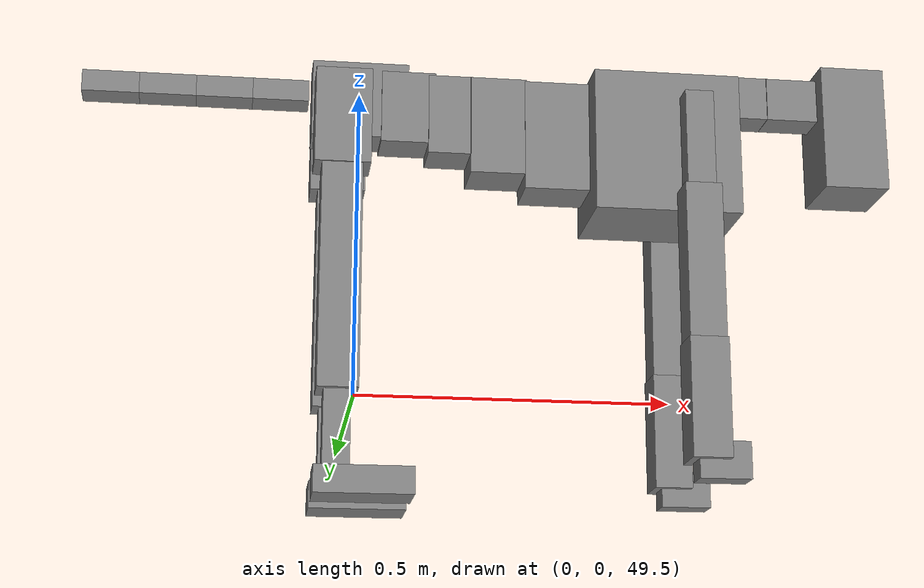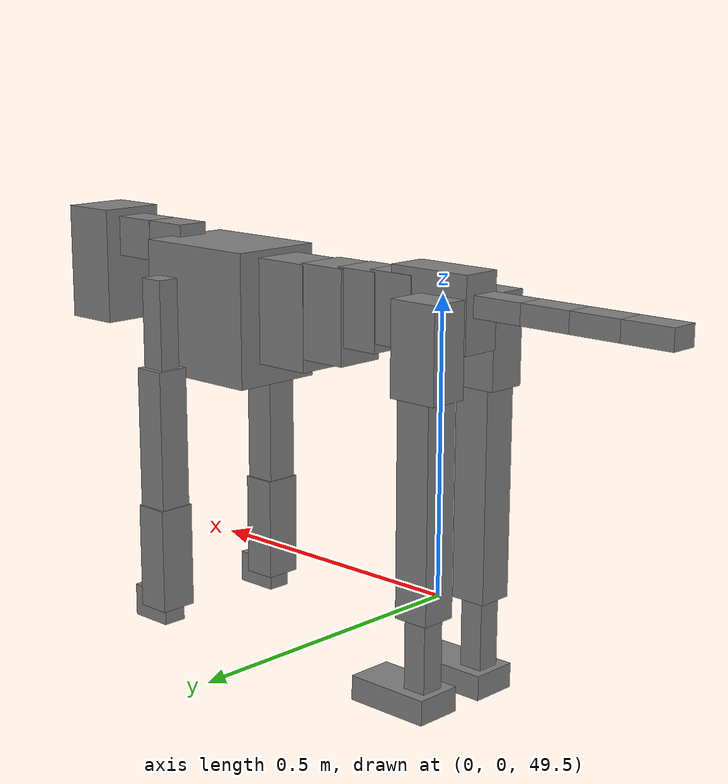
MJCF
<mujoco model="dog">

    <default>
        <joint armature="0.02" stiffness="1" damping="0.2" limited="true"/>
        <geom condim="3" friction="1 0.05 0.05" margin="0.01"/>
        <motor ctrllimited="true" ctrlrange="-1.0 1.0" forcelimited="true" gear="50"/>
    </default>

    <compiler inertiafromgeom="true" angle="radian"/>

    <option timestep="0.016" iterations="50" tolerance="1e-10" solver="Newton" jacobian="dense" cone="pyramidal"/>

    <size nconmax="20000" njmax="60000" nstack="5000000"/>
    <visual>
        <map force="0.1" zfar="30"/>
        <rgba haze="0.15 0.25 0.35 1"/>
        <quality shadowsize="2048"/>
        <global offwidth="800" offheight="800"/>
    </visual>

    <asset>
        <texture type="skybox" builtin="gradient" rgb1="0.3 0.5 0.7" rgb2="0 0 0" width="512" height="512"/>
        <texture name="texplane" type="2d" builtin="checker" rgb1=".2 .3 .4" rgb2=".1 0.15 0.2" width="512" height="512"
                 mark="cross" markrgb=".8 .8 .8"/>
        <texture name="texgeom" type="cube" builtin="flat" mark="cross" width="127" height="1278" rgb1="0.8 0.6 0.4"
                 rgb2="0.8 0.6 0.4" markrgb="1 1 1" random="0.01"/>

        <material name="matplane" reflectance="0.3" texture="texplane" texrepeat="1 1" texuniform="true"/>
        <material name="matgeom" texture="texgeom" texuniform="true" rgba="0.8 0.6 .4 1"/>
    </asset>

    <worldbody>
        <geom name="floor" pos="0 0 0" size="0 0 .25" type="plane" material="matplane" condim="3"/>

        <light directional="false" diffuse=".2 .2 .2" specular="0 0 0" pos="0 0 5" dir="0 0 -1" castshadow="false"/>
        <light mode="targetbodycom" target="torso" directional="false" diffuse=".8 .8 .8" specular="0.3 0.3 0.3"
               pos="0 0 4.0" dir="0 0 -1"/>

        <body name="root" pos="0 0 50">
            <freejoint name="root_1"/>
            <geom type="box" pos="0 0 -0.02" size="0.0774  0.0358  0.063" density="2030"/>

            <body name="spine1" pos="0.054 0 0">
                <joint name="spine1_y" axis="0 1 0" range="0 0.7" limited="true"/>
                <geom type="box" pos="0.02375 0 -0.03" size="0.04375  0.0375  0.05985" density="2030"/>

                <body name="spine2" pos="0.0612 0 0">
                    <joint name="spine2_y" axis="0 1 0" range="-0.15 0.15" limited="true"/>
                    <geom type="box" pos="0.03555  0  -0.04" size="0.04055  0.039  0.06615" density="2030"/>

                    <body name="spine3" pos="0.0730 0 0">
                        <joint name="spine3_y" axis="0 1 0" range="-0.15 0.15" limited="true"/>
                        <geom type="box" pos="0.03555  0  -0.057" size="0.04555  0.0445  0.081" density="2030"/>

                        <body name="spine4" pos="0.0780 0 0">
                            <joint name="spine4_y" axis="0 1 0" range="-0.15 0.15" limited="true"/>
                            <geom type="box" pos="0.05265  0  -0.07" size="0.05265  0.045  0.09135" density="2030"/>

                            <body name="torso" pos="0.1082 0 0">
                                <joint name="torso_y" axis="0 1 0" range="-0.15 0.15" limited="true"/>
                                <geom type="box" pos="0.11925  0  -0.085" size="0.11925  0.085  0.11745"
                                      density="2030"/>

                                <body name="neck1" pos="0.2160  0   0.0180">
                                    <joint name="neck1_y" axis="0 1 0" range="-1.2  -1" limited="true"/>
                                    <geom type="box" pos="0.0423  0  0" size="0.0423  0.03  0.036" density="2325"/>

                                    <body name="neck2" pos="0.0853  0  0">
                                        <joint name="neck2_y" axis="0 1 0" range="0.1  0" limited="true"/>
                                        <geom type="box" pos="0.0423  0  0" size="0.0423  0.03  0.036" density="2325"/>

                                        <body name="head" pos="0.0853  0  0">
                                            <joint name="head_y" axis="0 1 0" range="-0.3  -0.2" limited="true"/>
                                            <geom type="box" pos="0.0531  0  -0.055" size="0.0531  0.06  0.1044"
                                                  density="4030"/>

                                        </body>
                                    </body>
                                </body>

                                <body name="front_shoulder" pos="0.156  0   -0.0480">
                                    <joint name="front_shoulder_y" axis="0 1 0" range="-1 1.5" limited="true"/>
                                    <geom type="box" pos="0 0.13 -0.0656" size="0.0228  0.0195  0.0922" density="1158"/>
                                    <geom type="box" pos="0 -0.13 -0.0656" size="0.0228  0.0195  0.0922"
                                          density="1158"/>

                                    <body name="front_elbow" pos="0  0  -0.1312">
                                        <joint name="front_elbow_y" axis="0 1 0" range="-2 0" limited="true"/>
                                        <geom type="box" pos="0 0.13 -0.1310" size="0.0291  0.0298  0.1310"
                                              density="1081"/>
                                        <geom type="box" pos="0 -0.13 -0.1310" size="0.0291  0.0298  0.1310"
                                              density="1081"/>

                                        <body name="front_wrist" pos="0  0  -0.2621">
                                            <joint name="front_wrist_y" axis="0 1 0" range="-0.2 0" limited="true"/>
                                            <geom type="box" pos="0 0.13 -0.0806" size="0.0306  0.0340  0.0937"
                                                  density="1664"/>
                                            <geom type="box" pos="0 -0.13 -0.0806" size="0.0306  0.0340  0.0937"
                                                  density="1664"/>

                                            <body name="front_finger_end" pos="0  0  -0.1611">
                                                <joint name="front_finger_y" axis="0 1 0" range="-0.4 1"
                                                       limited="true"/>
                                                <geom type="box" pos="0.0220  0.13  -0.0140"
                                                      size="0.0403  0.0220  0.0290" density="1515"/>
                                                <geom type="box" pos="0.0220  -0.13  -0.0140"
                                                      size="0.0403  0.0220  0.0290" density="1515"/>

                                            </body>

                                        </body>
                                    </body>
                                </body>

                            </body>
                        </body>
                    </body>
                </body>
            </body>

            <body name="back_hip" pos="-0.03 0 -0.018">
                <joint name="back_hip_y" axis="0 1 0" range="-1.5 0.3" limited="true"/>
                <geom type="box" pos="0 0.07 -0.0554" size="0.0443  0.0348  0.0782" density="1154"/>
                <geom type="box" pos="0 -0.07 -0.0554" size="0.0443  0.0348  0.0782" density="1154"/>

                <body name="back_knee" pos="0  0  -0.1109">
                    <joint name="back_knee_y" axis="0 1 0" range="0 2.8" limited="true"/>
                    <geom type="box" pos="0 0.07 -0.1830" size="0.0321  0.0317  0.1986" density="1227"/>
                    <geom type="box" pos="0 -0.07 -0.1830" size="0.0321  0.0317  0.1986" density="1227"/>

                    <body name="back_ankle" pos="0  0  -0.3660">
                        <joint name="back_ankle_y" axis="0 1 0" range="-2.2 0" limited="true"/>
                        <geom type="box" pos="0 0.07 -0.0753" size="0.0210  0.0210  0.0866" density="1284"/>
                        <geom type="box" pos="0 -0.07 -0.0753" size="0.0210  0.0210  0.0866" density="1284"/>

                        <body name="back_toe_end" pos="0  0  -0.1507">
                            <joint name="back_toe_y" axis="0 1 0" range="-0.4 1" limited="true"/>
                            <geom type="box" pos="0.0416  0.07  -0.0063" size="0.0763  0.0416  0.0213" density="1515"/>
                            <geom type="box" pos="0.0416  -0.07  -0.0063" size="0.0763  0.0416  0.0213" density="1515"/>

                        </body>
                    </body>
                </body>
            </body>

            <body name="tail1" pos="-0.074 0 -0.006">
                <joint name="tail1_y" axis="0 1 0" range="-0.2 0.2" limited="true"/>
                <geom type="box" pos="-0.0536  0  0" size="0.045  0.025  0.0175" density="1587"/>

                <body name="tail2" pos="-0.09 0 0">
                    <joint name="tail2_y" axis="0 1 0" range="-0.2 0.2" limited="true"/>
                    <geom type="box" pos="-0.0536  0  0" size="0.045  0.025  0.0175" density="1587"/>

                    <body name="tail3" pos="-0.09 0 0">
                        <joint name="tail3_y" axis="0 1 0" range="-0.2 0.2" limited="true"/>
                        <geom type="box" pos="-0.0536  0  0" size="0.045  0.025  0.0175" density="1587"/>

                        <body name="tail4" pos="-0.09 0 0">
                            <joint name="tail4_y" axis="0 1 0" range="-0.2 0.2" limited="true"/>
                            <geom type="box" pos="-0.0536  0  0" size="0.045  0.025  0.0175" density="1587"/>

                        </body>
                    </body>
                </body>
            </body>
        </body>
    </worldbody>

    <actuator>
        <motor joint="spine1_y" forcerange="-150 150     "/>
        <motor joint="spine2_y" forcerange="-150 150     "/>
        <motor joint="spine3_y" forcerange="-150 150     "/>
        <motor joint="spine4_y" forcerange="-150 150     "/>
        <motor joint="torso_y" forcerange="-150 150     "/>
        <motor joint="neck1_y" forcerange="-100 100       "/>
        <motor joint="neck2_y" forcerange="-100 100       "/>
        <motor joint="head_y" forcerange="-150 150       "/>
        <motor joint="front_shoulder_y" forcerange="-127.10 102.91"/>
        <motor joint="front_elbow_y" forcerange="-146.99 169.49"/>
        <motor joint="front_wrist_y" forcerange="-146.80 125.06"/>
        <motor joint="front_finger_y" forcerange="-24.33 53.03"/>
        <motor joint="back_hip_y" forcerange="-350.10 313.27"/>
        <motor joint="back_knee_y" forcerange="-290.29 370.48"/>
        <motor joint="back_angle_y" forcerange="-152.62 82.75"/>
        <motor joint="back_toe_y" forcerange="-122.45 130.33"/>
        <motor joint="tail1_y" forcerange="-50 50     "/>
        <motor joint="tail2_y" forcerange="-50 50     "/>
        <motor joint="tail3_y" forcerange="-50 50     "/>
        <motor joint="tail4_y" forcerange="-50 50     "/>
    </actuator>
</mujoco>
